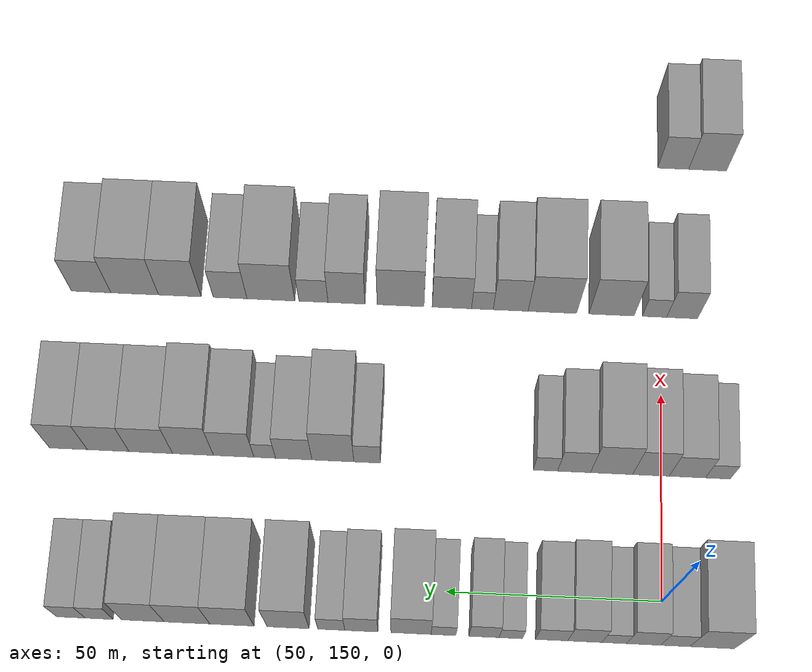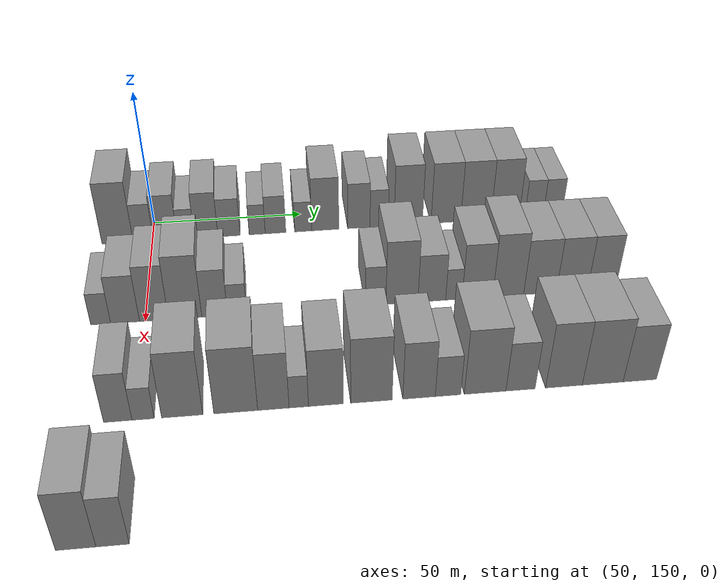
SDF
<sdf version="1.6">
 <world name="default">
  <model name="building_82">
   <static>1</static>
   <pose>50.0000 138.5358 0 0.000000 0.000000 0.000000</pose>
   <link name="link">
    <pose>0 0 12.00 0 0 0</pose>
    <collision name="collision"><geometry><box><size>20.0000 10.2439 24.0000</size></box></geometry></collision>
    <visual name="visual">
     <cast_shadows>0</cast_shadows>
     <geometry><box><size>20.0000 10.2439 24.0000</size></box></geometry>
     <material>
      <script>
       <uri>model://grey_wall/materials/scripts</uri>
       <uri>model://grey_wall/materials/textures</uri>
       <name>vrc/grey_wall</name>
      </script>
     </material>
    </visual>
   </link>
  </model>
  <model name="building_83">
   <static>1</static>
   <pose>50.0000 146.9961 0 0.000000 0.000000 0.000000</pose>
   <link name="link">
    <pose>0 0 7.50 0 0 0</pose>
    <collision name="collision"><geometry><box><size>20.0000 6.6766 15.0000</size></box></geometry></collision>
    <visual name="visual">
     <cast_shadows>0</cast_shadows>
     <geometry><box><size>20.0000 6.6766 15.0000</size></box></geometry>
     <material>
      <script>
       <uri>model://grey_wall/materials/scripts</uri>
       <uri>model://grey_wall/materials/textures</uri>
       <name>vrc/grey_wall</name>
      </script>
     </material>
    </visual>
   </link>
  </model>
  <model name="building_84">
   <static>1</static>
   <pose>50.0000 154.2788 0 0.000000 0.000000 0.000000</pose>
   <link name="link">
    <pose>0 0 9.00 0 0 0</pose>
    <collision name="collision"><geometry><box><size>20.0000 7.8888 18.0000</size></box></geometry></collision>
    <visual name="visual">
     <cast_shadows>0</cast_shadows>
     <geometry><box><size>20.0000 7.8888 18.0000</size></box></geometry>
     <material>
      <script>
       <uri>model://grey_wall/materials/scripts</uri>
       <uri>model://grey_wall/materials/textures</uri>
       <name>vrc/grey_wall</name>
      </script>
     </material>
    </visual>
   </link>
  </model>
  <model name="building_85">
   <static>1</static>
   <pose>50.0000 161.0475 0 0.000000 0.000000 0.000000</pose>
   <link name="link">
    <pose>0 0 6.00 0 0 0</pose>
    <collision name="collision"><geometry><box><size>20.0000 5.6485 12.0000</size></box></geometry></collision>
    <visual name="visual">
     <cast_shadows>0</cast_shadows>
     <geometry><box><size>20.0000 5.6485 12.0000</size></box></geometry>
     <material>
      <script>
       <uri>model://grey_wall/materials/scripts</uri>
       <uri>model://grey_wall/materials/textures</uri>
       <name>vrc/grey_wall</name>
      </script>
     </material>
    </visual>
   </link>
  </model>
  <model name="building_86">
   <static>1</static>
   <pose>50.0000 167.8121 0 0.000000 0.000000 0.000000</pose>
   <link name="link">
    <pose>0 0 9.00 0 0 0</pose>
    <collision name="collision"><geometry><box><size>20.0000 7.8808 18.0000</size></box></geometry></collision>
    <visual name="visual">
     <cast_shadows>0</cast_shadows>
     <geometry><box><size>20.0000 7.8808 18.0000</size></box></geometry>
     <material>
      <script>
       <uri>model://grey_wall/materials/scripts</uri>
       <uri>model://grey_wall/materials/textures</uri>
       <name>vrc/grey_wall</name>
      </script>
     </material>
    </visual>
   </link>
  </model>
  <model name="building_87">
   <static>1</static>
   <pose>50.0000 175.4566 0 0.000000 0.000000 0.000000</pose>
   <link name="link">
    <pose>0 0 7.50 0 0 0</pose>
    <collision name="collision"><geometry><box><size>20.0000 7.4082 15.0000</size></box></geometry></collision>
    <visual name="visual">
     <cast_shadows>0</cast_shadows>
     <geometry><box><size>20.0000 7.4082 15.0000</size></box></geometry>
     <material>
      <script>
       <uri>model://grey_wall/materials/scripts</uri>
       <uri>model://grey_wall/materials/textures</uri>
       <name>vrc/grey_wall</name>
      </script>
     </material>
    </visual>
   </link>
  </model>
  <model name="building_88">
   <static>1</static>
   <pose>50.0000 184.8614 0 0.000000 0.000000 0.000000</pose>
   <link name="link">
    <pose>0 0 6.00 0 0 0</pose>
    <collision name="collision"><geometry><box><size>20.0000 5.4014 12.0000</size></box></geometry></collision>
    <visual name="visual">
     <cast_shadows>0</cast_shadows>
     <geometry><box><size>20.0000 5.4014 12.0000</size></box></geometry>
     <material>
      <script>
       <uri>model://grey_wall/materials/scripts</uri>
       <uri>model://grey_wall/materials/textures</uri>
       <name>vrc/grey_wall</name>
      </script>
     </material>
    </visual>
   </link>
  </model>
  <model name="building_89">
   <static>1</static>
   <pose>50.0000 191.0295 0 0.000000 0.000000 0.000000</pose>
   <link name="link">
    <pose>0 0 7.50 0 0 0</pose>
    <collision name="collision"><geometry><box><size>20.0000 6.9348 15.0000</size></box></geometry></collision>
    <visual name="visual">
     <cast_shadows>0</cast_shadows>
     <geometry><box><size>20.0000 6.9348 15.0000</size></box></geometry>
     <material>
      <script>
       <uri>model://grey_wall/materials/scripts</uri>
       <uri>model://grey_wall/materials/textures</uri>
       <name>vrc/grey_wall</name>
      </script>
     </material>
    </visual>
   </link>
  </model>
  <model name="building_90">
   <static>1</static>
   <pose>50.0000 200.3569 0 0.000000 0.000000 0.000000</pose>
   <link name="link">
    <pose>0 0 6.00 0 0 0</pose>
    <collision name="collision"><geometry><box><size>20.0000 5.7200 12.0000</size></box></geometry></collision>
    <visual name="visual">
     <cast_shadows>0</cast_shadows>
     <geometry><box><size>20.0000 5.7200 12.0000</size></box></geometry>
     <material>
      <script>
       <uri>model://grey_wall/materials/scripts</uri>
       <uri>model://grey_wall/materials/textures</uri>
       <name>vrc/grey_wall</name>
      </script>
     </material>
    </visual>
   </link>
  </model>
  <model name="building_91">
   <static>1</static>
   <pose>50.0000 207.8361 0 0.000000 0.000000 0.000000</pose>
   <link name="link">
    <pose>0 0 10.50 0 0 0</pose>
    <collision name="collision"><geometry><box><size>20.0000 9.2384 21.0000</size></box></geometry></collision>
    <visual name="visual">
     <cast_shadows>0</cast_shadows>
     <geometry><box><size>20.0000 9.2384 21.0000</size></box></geometry>
     <material>
      <script>
       <uri>model://grey_wall/materials/scripts</uri>
       <uri>model://grey_wall/materials/textures</uri>
       <name>vrc/grey_wall</name>
      </script>
     </material>
    </visual>
   </link>
  </model>
  <model name="building_92">
   <static>1</static>
   <pose>50.0000 219.2616 0 0.000000 0.000000 0.000000</pose>
   <link name="link">
    <pose>0 0 9.00 0 0 0</pose>
    <collision name="collision"><geometry><box><size>20.0000 7.6127 18.0000</size></box></geometry></collision>
    <visual name="visual">
     <cast_shadows>0</cast_shadows>
     <geometry><box><size>20.0000 7.6127 18.0000</size></box></geometry>
     <material>
      <script>
       <uri>model://grey_wall/materials/scripts</uri>
       <uri>model://grey_wall/materials/textures</uri>
       <name>vrc/grey_wall</name>
      </script>
     </material>
    </visual>
   </link>
  </model>
  <model name="building_93">
   <static>1</static>
   <pose>50.0000 226.1811 0 0.000000 0.000000 0.000000</pose>
   <link name="link">
    <pose>0 0 7.50 0 0 0</pose>
    <collision name="collision"><geometry><box><size>20.0000 6.2263 15.0000</size></box></geometry></collision>
    <visual name="visual">
     <cast_shadows>0</cast_shadows>
     <geometry><box><size>20.0000 6.2263 15.0000</size></box></geometry>
     <material>
      <script>
       <uri>model://grey_wall/materials/scripts</uri>
       <uri>model://grey_wall/materials/textures</uri>
       <name>vrc/grey_wall</name>
      </script>
     </material>
    </visual>
   </link>
  </model>
  <model name="building_94">
   <static>1</static>
   <pose>50.0000 236.1768 0 0.000000 0.000000 0.000000</pose>
   <link name="link">
    <pose>0 0 12.00 0 0 0</pose>
    <collision name="collision"><geometry><box><size>20.0000 9.7651 24.0000</size></box></geometry></collision>
    <visual name="visual">
     <cast_shadows>0</cast_shadows>
     <geometry><box><size>20.0000 9.7651 24.0000</size></box></geometry>
     <material>
      <script>
       <uri>model://grey_wall/materials/scripts</uri>
       <uri>model://grey_wall/materials/textures</uri>
       <name>vrc/grey_wall</name>
      </script>
     </material>
    </visual>
   </link>
  </model>
  <model name="building_95">
   <static>1</static>
   <pose>50.0000 249.1840 0 0.000000 0.000000 0.000000</pose>
   <link name="link">
    <pose>0 0 12.00 0 0 0</pose>
    <collision name="collision"><geometry><box><size>20.0000 10.2492 24.0000</size></box></geometry></collision>
    <visual name="visual">
     <cast_shadows>0</cast_shadows>
     <geometry><box><size>20.0000 10.2492 24.0000</size></box></geometry>
     <material>
      <script>
       <uri>model://grey_wall/materials/scripts</uri>
       <uri>model://grey_wall/materials/textures</uri>
       <name>vrc/grey_wall</name>
      </script>
     </material>
    </visual>
   </link>
  </model>
  <model name="building_96">
   <static>1</static>
   <pose>50.0000 259.5714 0 0.000000 0.000000 0.000000</pose>
   <link name="link">
    <pose>0 0 12.00 0 0 0</pose>
    <collision name="collision"><geometry><box><size>20.0000 10.5257 24.0000</size></box></geometry></collision>
    <visual name="visual">
     <cast_shadows>0</cast_shadows>
     <geometry><box><size>20.0000 10.5257 24.0000</size></box></geometry>
     <material>
      <script>
       <uri>model://grey_wall/materials/scripts</uri>
       <uri>model://grey_wall/materials/textures</uri>
       <name>vrc/grey_wall</name>
      </script>
     </material>
    </visual>
   </link>
  </model>
  <model name="building_97">
   <static>1</static>
   <pose>50.0000 269.7643 0 0.000000 0.000000 0.000000</pose>
   <link name="link">
    <pose>0 0 12.00 0 0 0</pose>
    <collision name="collision"><geometry><box><size>20.0000 9.8600 24.0000</size></box></geometry></collision>
    <visual name="visual">
     <cast_shadows>0</cast_shadows>
     <geometry><box><size>20.0000 9.8600 24.0000</size></box></geometry>
     <material>
      <script>
       <uri>model://grey_wall/materials/scripts</uri>
       <uri>model://grey_wall/materials/textures</uri>
       <name>vrc/grey_wall</name>
      </script>
     </material>
    </visual>
   </link>
  </model>
  <model name="building_98">
   <static>1</static>
   <pose>50.0000 279.9234 0 0.000000 0.000000 0.000000</pose>
   <link name="link">
    <pose>0 0 7.50 0 0 0</pose>
    <collision name="collision"><geometry><box><size>20.0000 6.4581 15.0000</size></box></geometry></collision>
    <visual name="visual">
     <cast_shadows>0</cast_shadows>
     <geometry><box><size>20.0000 6.4581 15.0000</size></box></geometry>
     <material>
      <script>
       <uri>model://grey_wall/materials/scripts</uri>
       <uri>model://grey_wall/materials/textures</uri>
       <name>vrc/grey_wall</name>
      </script>
     </material>
    </visual>
   </link>
  </model>
  <model name="building_99">
   <static>1</static>
   <pose>50.0000 286.4619 0 0.000000 0.000000 0.000000</pose>
   <link name="link">
    <pose>0 0 7.50 0 0 0</pose>
    <collision name="collision"><geometry><box><size>20.0000 6.6190 15.0000</size></box></geometry></collision>
    <visual name="visual">
     <cast_shadows>0</cast_shadows>
     <geometry><box><size>20.0000 6.6190 15.0000</size></box></geometry>
     <material>
      <script>
       <uri>model://grey_wall/materials/scripts</uri>
       <uri>model://grey_wall/materials/textures</uri>
       <name>vrc/grey_wall</name>
      </script>
     </material>
    </visual>
   </link>
  </model>
  <model name="building_219">
   <static>1</static>
   <pose>90.0000 136.6204 0 0.000000 0.000000 0.000000</pose>
   <link name="link">
    <pose>0 0 6.00 0 0 0</pose>
    <collision name="collision"><geometry><box><size>20.0000 5.9175 12.0000</size></box></geometry></collision>
    <visual name="visual">
     <cast_shadows>0</cast_shadows>
     <geometry><box><size>20.0000 5.9175 12.0000</size></box></geometry>
     <material>
      <script>
       <uri>model://grey_wall/materials/scripts</uri>
       <uri>model://grey_wall/materials/textures</uri>
       <name>vrc/grey_wall</name>
      </script>
     </material>
    </visual>
   </link>
  </model>
  <model name="building_220">
   <static>1</static>
   <pose>90.0000 143.8834 0 0.000000 0.000000 0.000000</pose>
   <link name="link">
    <pose>0 0 9.00 0 0 0</pose>
    <collision name="collision"><geometry><box><size>20.0000 8.6084 18.0000</size></box></geometry></collision>
    <visual name="visual">
     <cast_shadows>0</cast_shadows>
     <geometry><box><size>20.0000 8.6084 18.0000</size></box></geometry>
     <material>
      <script>
       <uri>model://grey_wall/materials/scripts</uri>
       <uri>model://grey_wall/materials/textures</uri>
       <name>vrc/grey_wall</name>
      </script>
     </material>
    </visual>
   </link>
  </model>
  <model name="building_221">
   <static>1</static>
   <pose>90.0000 152.5299 0 0.000000 0.000000 0.000000</pose>
   <link name="link">
    <pose>0 0 10.50 0 0 0</pose>
    <collision name="collision"><geometry><box><size>20.0000 8.6846 21.0000</size></box></geometry></collision>
    <visual name="visual">
     <cast_shadows>0</cast_shadows>
     <geometry><box><size>20.0000 8.6846 21.0000</size></box></geometry>
     <material>
      <script>
       <uri>model://grey_wall/materials/scripts</uri>
       <uri>model://grey_wall/materials/textures</uri>
       <name>vrc/grey_wall</name>
      </script>
     </material>
    </visual>
   </link>
  </model>
  <model name="building_222">
   <static>1</static>
   <pose>90.0000 161.8874 0 0.000000 0.000000 0.000000</pose>
   <link name="link">
    <pose>0 0 12.00 0 0 0</pose>
    <collision name="collision"><geometry><box><size>20.0000 10.0305 24.0000</size></box></geometry></collision>
    <visual name="visual">
     <cast_shadows>0</cast_shadows>
     <geometry><box><size>20.0000 10.0305 24.0000</size></box></geometry>
     <material>
      <script>
       <uri>model://grey_wall/materials/scripts</uri>
       <uri>model://grey_wall/materials/textures</uri>
       <name>vrc/grey_wall</name>
      </script>
     </material>
    </visual>
   </link>
  </model>
  <model name="building_223">
   <static>1</static>
   <pose>90.0000 170.8063 0 0.000000 0.000000 0.000000</pose>
   <link name="link">
    <pose>0 0 9.00 0 0 0</pose>
    <collision name="collision"><geometry><box><size>20.0000 7.8072 18.0000</size></box></geometry></collision>
    <visual name="visual">
     <cast_shadows>0</cast_shadows>
     <geometry><box><size>20.0000 7.8072 18.0000</size></box></geometry>
     <material>
      <script>
       <uri>model://grey_wall/materials/scripts</uri>
       <uri>model://grey_wall/materials/textures</uri>
       <name>vrc/grey_wall</name>
      </script>
     </material>
    </visual>
   </link>
  </model>
  <model name="building_224">
   <static>1</static>
   <pose>90.0000 177.6095 0 0.000000 0.000000 0.000000</pose>
   <link name="link">
    <pose>0 0 6.00 0 0 0</pose>
    <collision name="collision"><geometry><box><size>20.0000 5.7991 12.0000</size></box></geometry></collision>
    <visual name="visual">
     <cast_shadows>0</cast_shadows>
     <geometry><box><size>20.0000 5.7991 12.0000</size></box></geometry>
     <material>
      <script>
       <uri>model://grey_wall/materials/scripts</uri>
       <uri>model://grey_wall/materials/textures</uri>
       <name>vrc/grey_wall</name>
      </script>
     </material>
    </visual>
   </link>
  </model>
  <model name="building_225">
   <static>1</static>
   <pose>90.0000 220.0633 0 0.000000 0.000000 0.000000</pose>
   <link name="link">
    <pose>0 0 7.50 0 0 0</pose>
    <collision name="collision"><geometry><box><size>20.0000 6.3695 15.0000</size></box></geometry></collision>
    <visual name="visual">
     <cast_shadows>0</cast_shadows>
     <geometry><box><size>20.0000 6.3695 15.0000</size></box></geometry>
     <material>
      <script>
       <uri>model://grey_wall/materials/scripts</uri>
       <uri>model://grey_wall/materials/textures</uri>
       <name>vrc/grey_wall</name>
      </script>
     </material>
    </visual>
   </link>
  </model>
  <model name="building_226">
   <static>1</static>
   <pose>90.0000 228.2520 0 0.000000 0.000000 0.000000</pose>
   <link name="link">
    <pose>0 0 12.00 0 0 0</pose>
    <collision name="collision"><geometry><box><size>20.0000 10.0078 24.0000</size></box></geometry></collision>
    <visual name="visual">
     <cast_shadows>0</cast_shadows>
     <geometry><box><size>20.0000 10.0078 24.0000</size></box></geometry>
     <material>
      <script>
       <uri>model://grey_wall/materials/scripts</uri>
       <uri>model://grey_wall/materials/textures</uri>
       <name>vrc/grey_wall</name>
      </script>
     </material>
    </visual>
   </link>
  </model>
  <model name="building_227">
   <static>1</static>
   <pose>90.0000 237.5945 0 0.000000 0.000000 0.000000</pose>
   <link name="link">
    <pose>0 0 9.00 0 0 0</pose>
    <collision name="collision"><geometry><box><size>20.0000 8.6774 18.0000</size></box></geometry></collision>
    <visual name="visual">
     <cast_shadows>0</cast_shadows>
     <geometry><box><size>20.0000 8.6774 18.0000</size></box></geometry>
     <material>
      <script>
       <uri>model://grey_wall/materials/scripts</uri>
       <uri>model://grey_wall/materials/textures</uri>
       <name>vrc/grey_wall</name>
      </script>
     </material>
    </visual>
   </link>
  </model>
  <model name="building_228">
   <static>1</static>
   <pose>90.0000 244.5122 0 0.000000 0.000000 0.000000</pose>
   <link name="link">
    <pose>0 0 6.00 0 0 0</pose>
    <collision name="collision"><geometry><box><size>20.0000 5.1579 12.0000</size></box></geometry></collision>
    <visual name="visual">
     <cast_shadows>0</cast_shadows>
     <geometry><box><size>20.0000 5.1579 12.0000</size></box></geometry>
     <material>
      <script>
       <uri>model://grey_wall/materials/scripts</uri>
       <uri>model://grey_wall/materials/textures</uri>
       <name>vrc/grey_wall</name>
      </script>
     </material>
    </visual>
   </link>
  </model>
  <model name="building_229">
   <static>1</static>
   <pose>90.0000 251.9325 0 0.000000 0.000000 0.000000</pose>
   <link name="link">
    <pose>0 0 10.50 0 0 0</pose>
    <collision name="collision"><geometry><box><size>20.0000 9.6826 21.0000</size></box></geometry></collision>
    <visual name="visual">
     <cast_shadows>0</cast_shadows>
     <geometry><box><size>20.0000 9.6826 21.0000</size></box></geometry>
     <material>
      <script>
       <uri>model://grey_wall/materials/scripts</uri>
       <uri>model://grey_wall/materials/textures</uri>
       <name>vrc/grey_wall</name>
      </script>
     </material>
    </visual>
   </link>
  </model>
  <model name="building_230">
   <static>1</static>
   <pose>90.0000 261.6769 0 0.000000 0.000000 0.000000</pose>
   <link name="link">
    <pose>0 0 12.00 0 0 0</pose>
    <collision name="collision"><geometry><box><size>20.0000 9.8063 24.0000</size></box></geometry></collision>
    <visual name="visual">
     <cast_shadows>0</cast_shadows>
     <geometry><box><size>20.0000 9.8063 24.0000</size></box></geometry>
     <material>
      <script>
       <uri>model://grey_wall/materials/scripts</uri>
       <uri>model://grey_wall/materials/textures</uri>
       <name>vrc/grey_wall</name>
      </script>
     </material>
    </visual>
   </link>
  </model>
  <model name="building_231">
   <static>1</static>
   <pose>90.0000 271.7896 0 0.000000 0.000000 0.000000</pose>
   <link name="link">
    <pose>0 0 10.50 0 0 0</pose>
    <collision name="collision"><geometry><box><size>20.0000 10.4190 21.0000</size></box></geometry></collision>
    <visual name="visual">
     <cast_shadows>0</cast_shadows>
     <geometry><box><size>20.0000 10.4190 21.0000</size></box></geometry>
     <material>
      <script>
       <uri>model://grey_wall/materials/scripts</uri>
       <uri>model://grey_wall/materials/textures</uri>
       <name>vrc/grey_wall</name>
      </script>
     </material>
    </visual>
   </link>
  </model>
  <model name="building_232">
   <static>1</static>
   <pose>90.0000 282.0021 0 0.000000 0.000000 0.000000</pose>
   <link name="link">
    <pose>0 0 10.50 0 0 0</pose>
    <collision name="collision"><geometry><box><size>20.0000 10.0059 21.0000</size></box></geometry></collision>
    <visual name="visual">
     <cast_shadows>0</cast_shadows>
     <geometry><box><size>20.0000 10.0059 21.0000</size></box></geometry>
     <material>
      <script>
       <uri>model://grey_wall/materials/scripts</uri>
       <uri>model://grey_wall/materials/textures</uri>
       <name>vrc/grey_wall</name>
      </script>
     </material>
    </visual>
   </link>
  </model>
  <model name="building_233">
   <static>1</static>
   <pose>90.0000 291.5477 0 0.000000 0.000000 0.000000</pose>
   <link name="link">
    <pose>0 0 10.50 0 0 0</pose>
    <collision name="collision"><geometry><box><size>20.0000 9.0853 21.0000</size></box></geometry></collision>
    <visual name="visual">
     <cast_shadows>0</cast_shadows>
     <geometry><box><size>20.0000 9.0853 21.0000</size></box></geometry>
     <material>
      <script>
       <uri>model://grey_wall/materials/scripts</uri>
       <uri>model://grey_wall/materials/textures</uri>
       <name>vrc/grey_wall</name>
      </script>
     </material>
    </visual>
   </link>
  </model>
  <model name="building_362">
   <static>1</static>
   <pose>130.0000 144.8263 0 0.000000 0.000000 0.000000</pose>
   <link name="link">
    <pose>0 0 9.00 0 0 0</pose>
    <collision name="collision"><geometry><box><size>20.0000 7.5904 18.0000</size></box></geometry></collision>
    <visual name="visual">
     <cast_shadows>0</cast_shadows>
     <geometry><box><size>20.0000 7.5904 18.0000</size></box></geometry>
     <material>
      <script>
       <uri>model://grey_wall/materials/scripts</uri>
       <uri>model://grey_wall/materials/textures</uri>
       <name>vrc/grey_wall</name>
      </script>
     </material>
    </visual>
   </link>
  </model>
  <model name="building_363">
   <static>1</static>
   <pose>130.0000 151.5975 0 0.000000 0.000000 0.000000</pose>
   <link name="link">
    <pose>0 0 6.00 0 0 0</pose>
    <collision name="collision"><geometry><box><size>20.0000 5.9520 12.0000</size></box></geometry></collision>
    <visual name="visual">
     <cast_shadows>0</cast_shadows>
     <geometry><box><size>20.0000 5.9520 12.0000</size></box></geometry>
     <material>
      <script>
       <uri>model://grey_wall/materials/scripts</uri>
       <uri>model://grey_wall/materials/textures</uri>
       <name>vrc/grey_wall</name>
      </script>
     </material>
    </visual>
   </link>
  </model>
  <model name="building_364">
   <static>1</static>
   <pose>130.0000 162.1271 0 0.000000 0.000000 0.000000</pose>
   <link name="link">
    <pose>0 0 12.00 0 0 0</pose>
    <collision name="collision"><geometry><box><size>20.0000 11.1071 24.0000</size></box></geometry></collision>
    <visual name="visual">
     <cast_shadows>0</cast_shadows>
     <geometry><box><size>20.0000 11.1071 24.0000</size></box></geometry>
     <material>
      <script>
       <uri>model://grey_wall/materials/scripts</uri>
       <uri>model://grey_wall/materials/textures</uri>
       <name>vrc/grey_wall</name>
      </script>
     </material>
    </visual>
   </link>
  </model>
  <model name="building_365">
   <static>1</static>
   <pose>130.0000 176.6430 0 0.000000 0.000000 0.000000</pose>
   <link name="link">
    <pose>0 0 12.00 0 0 0</pose>
    <collision name="collision"><geometry><box><size>20.0000 11.9247 24.0000</size></box></geometry></collision>
    <visual name="visual">
     <cast_shadows>0</cast_shadows>
     <geometry><box><size>20.0000 11.9247 24.0000</size></box></geometry>
     <material>
      <script>
       <uri>model://grey_wall/materials/scripts</uri>
       <uri>model://grey_wall/materials/textures</uri>
       <name>vrc/grey_wall</name>
      </script>
     </material>
    </visual>
   </link>
  </model>
  <model name="building_366">
   <static>1</static>
   <pose>130.0000 186.8994 0 0.000000 0.000000 0.000000</pose>
   <link name="link">
    <pose>0 0 10.50 0 0 0</pose>
    <collision name="collision"><geometry><box><size>20.0000 8.5882 21.0000</size></box></geometry></collision>
    <visual name="visual">
     <cast_shadows>0</cast_shadows>
     <geometry><box><size>20.0000 8.5882 21.0000</size></box></geometry>
     <material>
      <script>
       <uri>model://grey_wall/materials/scripts</uri>
       <uri>model://grey_wall/materials/textures</uri>
       <name>vrc/grey_wall</name>
      </script>
     </material>
    </visual>
   </link>
  </model>
  <model name="building_367">
   <static>1</static>
   <pose>130.0000 193.8571 0 0.000000 0.000000 0.000000</pose>
   <link name="link">
    <pose>0 0 6.00 0 0 0</pose>
    <collision name="collision"><geometry><box><size>20.0000 5.3273 12.0000</size></box></geometry></collision>
    <visual name="visual">
     <cast_shadows>0</cast_shadows>
     <geometry><box><size>20.0000 5.3273 12.0000</size></box></geometry>
     <material>
      <script>
       <uri>model://grey_wall/materials/scripts</uri>
       <uri>model://grey_wall/materials/textures</uri>
       <name>vrc/grey_wall</name>
      </script>
     </material>
    </visual>
   </link>
  </model>
  <model name="building_368">
   <static>1</static>
   <pose>130.0000 201.3632 0 0.000000 0.000000 0.000000</pose>
   <link name="link">
    <pose>0 0 10.50 0 0 0</pose>
    <collision name="collision"><geometry><box><size>20.0000 9.6849 21.0000</size></box></geometry></collision>
    <visual name="visual">
     <cast_shadows>0</cast_shadows>
     <geometry><box><size>20.0000 9.6849 21.0000</size></box></geometry>
     <material>
      <script>
       <uri>model://grey_wall/materials/scripts</uri>
       <uri>model://grey_wall/materials/textures</uri>
       <name>vrc/grey_wall</name>
      </script>
     </material>
    </visual>
   </link>
  </model>
  <model name="building_369">
   <static>1</static>
   <pose>130.0000 213.9681 0 0.000000 0.000000 0.000000</pose>
   <link name="link">
    <pose>0 0 12.00 0 0 0</pose>
    <collision name="collision"><geometry><box><size>20.0000 11.5250 24.0000</size></box></geometry></collision>
    <visual name="visual">
     <cast_shadows>0</cast_shadows>
     <geometry><box><size>20.0000 11.5250 24.0000</size></box></geometry>
     <material>
      <script>
       <uri>model://grey_wall/materials/scripts</uri>
       <uri>model://grey_wall/materials/textures</uri>
       <name>vrc/grey_wall</name>
      </script>
     </material>
    </visual>
   </link>
  </model>
  <model name="building_370">
   <static>1</static>
   <pose>130.0000 227.2815 0 0.000000 0.000000 0.000000</pose>
   <link name="link">
    <pose>0 0 10.50 0 0 0</pose>
    <collision name="collision"><geometry><box><size>20.0000 9.1016 21.0000</size></box></geometry></collision>
    <visual name="visual">
     <cast_shadows>0</cast_shadows>
     <geometry><box><size>20.0000 9.1016 21.0000</size></box></geometry>
     <material>
      <script>
       <uri>model://grey_wall/materials/scripts</uri>
       <uri>model://grey_wall/materials/textures</uri>
       <name>vrc/grey_wall</name>
      </script>
     </material>
    </visual>
   </link>
  </model>
  <model name="building_371">
   <static>1</static>
   <pose>130.0000 235.4207 0 0.000000 0.000000 0.000000</pose>
   <link name="link">
    <pose>0 0 7.50 0 0 0</pose>
    <collision name="collision"><geometry><box><size>20.0000 7.1767 15.0000</size></box></geometry></collision>
    <visual name="visual">
     <cast_shadows>0</cast_shadows>
     <geometry><box><size>20.0000 7.1767 15.0000</size></box></geometry>
     <material>
      <script>
       <uri>model://grey_wall/materials/scripts</uri>
       <uri>model://grey_wall/materials/textures</uri>
       <name>vrc/grey_wall</name>
      </script>
     </material>
    </visual>
   </link>
  </model>
  <model name="building_372">
   <static>1</static>
   <pose>130.0000 245.9161 0 0.000000 0.000000 0.000000</pose>
   <link name="link">
    <pose>0 0 12.00 0 0 0</pose>
    <collision name="collision"><geometry><box><size>20.0000 11.8142 24.0000</size></box></geometry></collision>
    <visual name="visual">
     <cast_shadows>0</cast_shadows>
     <geometry><box><size>20.0000 11.8142 24.0000</size></box></geometry>
     <material>
      <script>
       <uri>model://grey_wall/materials/scripts</uri>
       <uri>model://grey_wall/materials/textures</uri>
       <name>vrc/grey_wall</name>
      </script>
     </material>
    </visual>
   </link>
  </model>
  <model name="building_373">
   <static>1</static>
   <pose>130.0000 255.9901 0 0.000000 0.000000 0.000000</pose>
   <link name="link">
    <pose>0 0 9.00 0 0 0</pose>
    <collision name="collision"><geometry><box><size>20.0000 8.3339 18.0000</size></box></geometry></collision>
    <visual name="visual">
     <cast_shadows>0</cast_shadows>
     <geometry><box><size>20.0000 8.3339 18.0000</size></box></geometry>
     <material>
      <script>
       <uri>model://grey_wall/materials/scripts</uri>
       <uri>model://grey_wall/materials/textures</uri>
       <name>vrc/grey_wall</name>
      </script>
     </material>
    </visual>
   </link>
  </model>
  <model name="building_374">
   <static>1</static>
   <pose>130.0000 268.4251 0 0.000000 0.000000 0.000000</pose>
   <link name="link">
    <pose>0 0 12.00 0 0 0</pose>
    <collision name="collision"><geometry><box><size>20.0000 10.5360 24.0000</size></box></geometry></collision>
    <visual name="visual">
     <cast_shadows>0</cast_shadows>
     <geometry><box><size>20.0000 10.5360 24.0000</size></box></geometry>
     <material>
      <script>
       <uri>model://grey_wall/materials/scripts</uri>
       <uri>model://grey_wall/materials/textures</uri>
       <name>vrc/grey_wall</name>
      </script>
     </material>
    </visual>
   </link>
  </model>
  <model name="building_375">
   <static>1</static>
   <pose>130.0000 279.6021 0 0.000000 0.000000 0.000000</pose>
   <link name="link">
    <pose>0 0 12.00 0 0 0</pose>
    <collision name="collision"><geometry><box><size>20.0000 11.8180 24.0000</size></box></geometry></collision>
    <visual name="visual">
     <cast_shadows>0</cast_shadows>
     <geometry><box><size>20.0000 11.8180 24.0000</size></box></geometry>
     <material>
      <script>
       <uri>model://grey_wall/materials/scripts</uri>
       <uri>model://grey_wall/materials/textures</uri>
       <name>vrc/grey_wall</name>
      </script>
     </material>
    </visual>
   </link>
  </model>
  <model name="building_376">
   <static>1</static>
   <pose>130.0000 290.3791 0 0.000000 0.000000 0.000000</pose>
   <link name="link">
    <pose>0 0 10.50 0 0 0</pose>
    <collision name="collision"><geometry><box><size>20.0000 9.7359 21.0000</size></box></geometry></collision>
    <visual name="visual">
     <cast_shadows>0</cast_shadows>
     <geometry><box><size>20.0000 9.7359 21.0000</size></box></geometry>
     <material>
      <script>
       <uri>model://grey_wall/materials/scripts</uri>
       <uri>model://grey_wall/materials/textures</uri>
       <name>vrc/grey_wall</name>
      </script>
     </material>
    </visual>
   </link>
  </model>
  <model name="building_489">
   <static>1</static>
   <pose>170.0000 138.0459 0 0.000000 0.000000 0.000000</pose>
   <link name="link">
    <pose>0 0 10.50 0 0 0</pose>
    <collision name="collision"><geometry><box><size>20.0000 9.5371 21.0000</size></box></geometry></collision>
    <visual name="visual">
     <cast_shadows>0</cast_shadows>
     <geometry><box><size>20.0000 9.5371 21.0000</size></box></geometry>
     <material>
      <script>
       <uri>model://grey_wall/materials/scripts</uri>
       <uri>model://grey_wall/materials/textures</uri>
       <name>vrc/grey_wall</name>
      </script>
     </material>
    </visual>
   </link>
  </model>
  <model name="building_490">
   <static>1</static>
   <pose>170.0000 146.7457 0 0.000000 0.000000 0.000000</pose>
   <link name="link">
    <pose>0 0 9.00 0 0 0</pose>
    <collision name="collision"><geometry><box><size>20.0000 7.8626 18.0000</size></box></geometry></collision>
    <visual name="visual">
     <cast_shadows>0</cast_shadows>
     <geometry><box><size>20.0000 7.8626 18.0000</size></box></geometry>
     <material>
      <script>
       <uri>model://grey_wall/materials/scripts</uri>
       <uri>model://grey_wall/materials/textures</uri>
       <name>vrc/grey_wall</name>
      </script>
     </material>
    </visual>
   </link>
  </model>
 </world>
</sdf>
